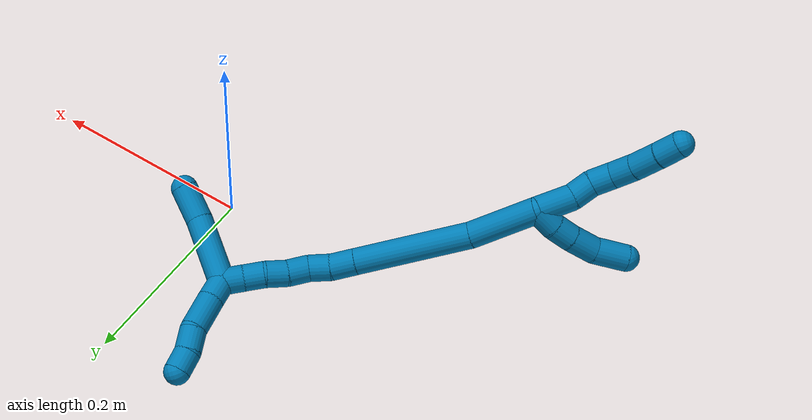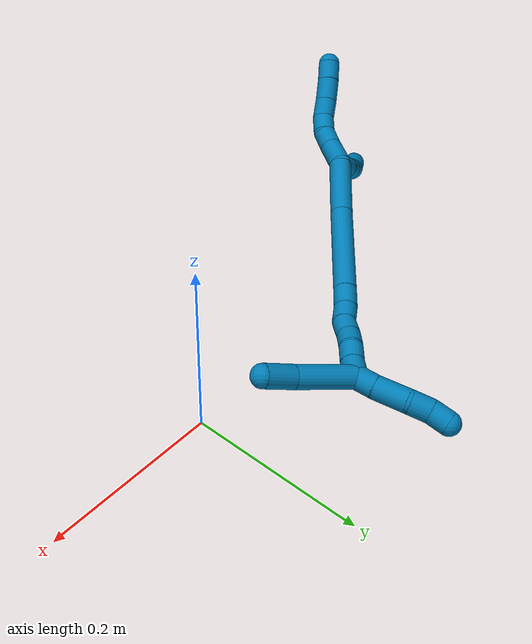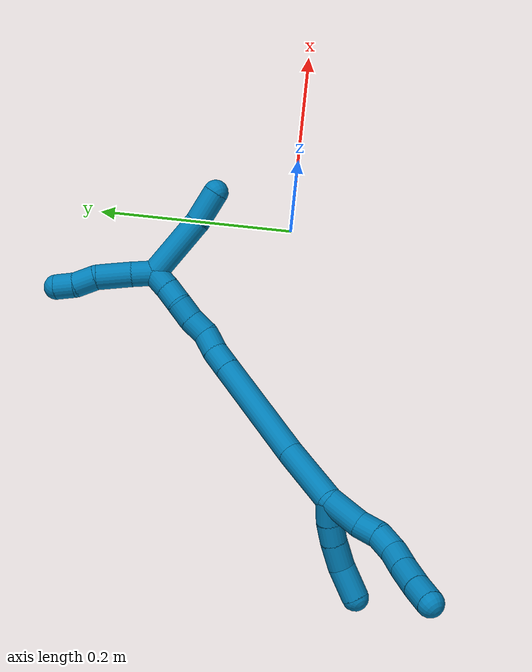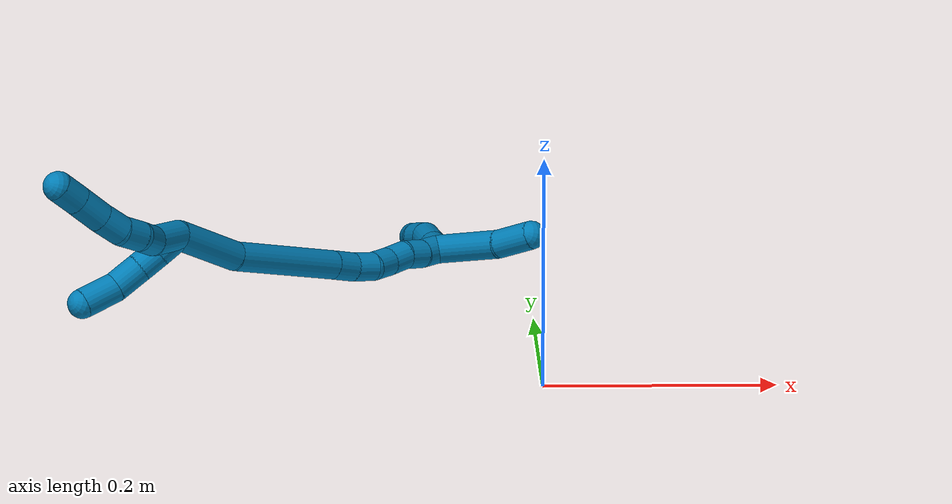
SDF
<sdf version="1.7">
 <world name="default">
  <model name="9">
   <static>0</static>
   <link name="9">
    <collision name="collision-cylinder-e_1_2_8">
     <pose>-0.000359 -0.007101 0.015891 0.420244 -0.020605 -0.004395</pose>
     <geometry><cylinder><radius>0.0125</radius><length>0.034819</length></cylinder></geometry>
     <surface>
      <friction><ode><mu>1.16</mu><mu2>1.16</mu2><slip1>0</slip1><slip2>0</slip2></ode></friction>
      <contact><ode><kp>1e+06</kp><kd>1</kd><max_vel>0</max_vel><min_depth>0.001</min_depth></ode></contact>
     </surface>
    </collision>
    <visual name="visual-cylinder-e_1_2_8">
     <pose>-0.000359 -0.007101 0.015891 0.420244 -0.020605 -0.004395</pose>
     <geometry><cylinder><radius>0.0125</radius><length>0.034819</length></cylinder></geometry>
     <material><ambient>0 0.490196 0.709804 1</ambient></material>
    </visual>
    <collision name="collision-cylinder-e_2_8_9">
     <pose>0.002308 -0.016962 0.0418 0.268761 0.283296 0.038554</pose>
     <geometry><cylinder><radius>0.0125</radius><length>0.021644</length></cylinder></geometry>
     <surface>
      <friction><ode><mu>1.16</mu><mu2>1.16</mu2><slip1>0</slip1><slip2>0</slip2></ode></friction>
      <contact><ode><kp>1e+06</kp><kd>1</kd><max_vel>0</max_vel><min_depth>0.001</min_depth></ode></contact>
     </surface>
    </collision>
    <visual name="visual-cylinder-e_2_8_9">
     <pose>0.002308 -0.016962 0.0418 0.268761 0.283296 0.038554</pose>
     <geometry><cylinder><radius>0.0125</radius><length>0.021644</length></cylinder></geometry>
     <material><ambient>0 0.490196 0.709804 1</ambient></material>
    </visual>
    <collision name="collision-cylinder-e_3_9_10">
     <pose>0.005911 -0.0201 0.062522 0.035407 0.053929 0.000955</pose>
     <geometry><cylinder><radius>0.0125</radius><length>0.021453</length></cylinder></geometry>
     <surface>
      <friction><ode><mu>1.16</mu><mu2>1.16</mu2><slip1>0</slip1><slip2>0</slip2></ode></friction>
      <contact><ode><kp>1e+06</kp><kd>1</kd><max_vel>0</max_vel><min_depth>0.001</min_depth></ode></contact>
     </surface>
    </collision>
    <visual name="visual-cylinder-e_3_9_10">
     <pose>0.005911 -0.0201 0.062522 0.035407 0.053929 0.000955</pose>
     <geometry><cylinder><radius>0.0125</radius><length>0.021453</length></cylinder></geometry>
     <material><ambient>0 0.490196 0.709804 1</ambient></material>
    </visual>
    <collision name="collision-cylinder-e_4_10_11">
     <pose>0.007811 -0.017504 0.084109 -0.266805 0.11664 -0.015671</pose>
     <geometry><cylinder><radius>0.0125</radius><length>0.02272</length></cylinder></geometry>
     <surface>
      <friction><ode><mu>1.16</mu><mu2>1.16</mu2><slip1>0</slip1><slip2>0</slip2></ode></friction>
      <contact><ode><kp>1e+06</kp><kd>1</kd><max_vel>0</max_vel><min_depth>0.001</min_depth></ode></contact>
     </surface>
    </collision>
    <visual name="visual-cylinder-e_4_10_11">
     <pose>0.007811 -0.017504 0.084109 -0.266805 0.11664 -0.015671</pose>
     <geometry><cylinder><radius>0.0125</radius><length>0.02272</length></cylinder></geometry>
     <material><ambient>0 0.490196 0.709804 1</ambient></material>
    </visual>
    <collision name="collision-cylinder-e_5_11_12">
     <pose>0.011624 -0.011003 0.10754 -0.273978 0.188855 -0.02611</pose>
     <geometry><cylinder><radius>0.0125</radius><length>0.026539</length></cylinder></geometry>
     <surface>
      <friction><ode><mu>1.16</mu><mu2>1.16</mu2><slip1>0</slip1><slip2>0</slip2></ode></friction>
      <contact><ode><kp>1e+06</kp><kd>1</kd><max_vel>0</max_vel><min_depth>0.001</min_depth></ode></contact>
     </surface>
    </collision>
    <visual name="visual-cylinder-e_5_11_12">
     <pose>0.011624 -0.011003 0.10754 -0.273978 0.188855 -0.02611</pose>
     <geometry><cylinder><radius>0.0125</radius><length>0.026539</length></cylinder></geometry>
     <material><ambient>0 0.490196 0.709804 1</ambient></material>
    </visual>
    <collision name="collision-cylinder-e_6_12_6">
     <pose>0.016467 -0.005146 0.13101 -0.210259 0.207523 -0.021976</pose>
     <geometry><cylinder><radius>0.0125</radius><length>0.022825</length></cylinder></geometry>
     <surface>
      <friction><ode><mu>1.16</mu><mu2>1.16</mu2><slip1>0</slip1><slip2>0</slip2></ode></friction>
      <contact><ode><kp>1e+06</kp><kd>1</kd><max_vel>0</max_vel><min_depth>0.001</min_depth></ode></contact>
     </surface>
    </collision>
    <visual name="visual-cylinder-e_6_12_6">
     <pose>0.016467 -0.005146 0.13101 -0.210259 0.207523 -0.021976</pose>
     <geometry><cylinder><radius>0.0125</radius><length>0.022825</length></cylinder></geometry>
     <material><ambient>0 0.490196 0.709804 1</ambient></material>
    </visual>
    <collision name="collision-cylinder-e_1_2_13">
     <pose>-0.009834 -0.002711 0.00427 0.565713 -1.09572 -0.351039</pose>
     <geometry><cylinder><radius>0.0125</radius><length>0.022116</length></cylinder></geometry>
     <surface>
      <friction><ode><mu>1.16</mu><mu2>1.16</mu2><slip1>0</slip1><slip2>0</slip2></ode></friction>
      <contact><ode><kp>1e+06</kp><kd>1</kd><max_vel>0</max_vel><min_depth>0.001</min_depth></ode></contact>
     </surface>
    </collision>
    <visual name="visual-cylinder-e_1_2_13">
     <pose>-0.009834 -0.002711 0.00427 0.565713 -1.09572 -0.351039</pose>
     <geometry><cylinder><radius>0.0125</radius><length>0.022116</length></cylinder></geometry>
     <material><ambient>0 0.490196 0.709804 1</ambient></material>
    </visual>
    <collision name="collision-cylinder-e_2_13_14">
     <pose>-0.027748 -0.008768 0.01365 0.579684 -0.923573 -0.294703</pose>
     <geometry><cylinder><radius>0.0125</radius><length>0.02026</length></cylinder></geometry>
     <surface>
      <friction><ode><mu>1.16</mu><mu2>1.16</mu2><slip1>0</slip1><slip2>0</slip2></ode></friction>
      <contact><ode><kp>1e+06</kp><kd>1</kd><max_vel>0</max_vel><min_depth>0.001</min_depth></ode></contact>
     </surface>
    </collision>
    <visual name="visual-cylinder-e_2_13_14">
     <pose>-0.027748 -0.008768 0.01365 0.579684 -0.923573 -0.294703</pose>
     <geometry><cylinder><radius>0.0125</radius><length>0.02026</length></cylinder></geometry>
     <material><ambient>0 0.490196 0.709804 1</ambient></material>
    </visual>
    <collision name="collision-cylinder-e_3_14_15">
     <pose>-0.045413 -0.017013 0.026066 0.590718 -0.82819 -0.265871</pose>
     <geometry><cylinder><radius>0.0125</radius><length>0.026017</length></cylinder></geometry>
     <surface>
      <friction><ode><mu>1.16</mu><mu2>1.16</mu2><slip1>0</slip1><slip2>0</slip2></ode></friction>
      <contact><ode><kp>1e+06</kp><kd>1</kd><max_vel>0</max_vel><min_depth>0.001</min_depth></ode></contact>
     </surface>
    </collision>
    <visual name="visual-cylinder-e_3_14_15">
     <pose>-0.045413 -0.017013 0.026066 0.590718 -0.82819 -0.265871</pose>
     <geometry><cylinder><radius>0.0125</radius><length>0.026017</length></cylinder></geometry>
     <material><ambient>0 0.490196 0.709804 1</ambient></material>
    </visual>
    <collision name="collision-cylinder-e_4_15_5">
     <pose>-0.063865 -0.026862 0.04548 0.388049 -0.595845 -0.120527</pose>
     <geometry><cylinder><radius>0.0125</radius><length>0.031607</length></cylinder></geometry>
     <surface>
      <friction><ode><mu>1.16</mu><mu2>1.16</mu2><slip1>0</slip1><slip2>0</slip2></ode></friction>
      <contact><ode><kp>1e+06</kp><kd>1</kd><max_vel>0</max_vel><min_depth>0.001</min_depth></ode></contact>
     </surface>
    </collision>
    <visual name="visual-cylinder-e_4_15_5">
     <pose>-0.063865 -0.026862 0.04548 0.388049 -0.595845 -0.120527</pose>
     <geometry><cylinder><radius>0.0125</radius><length>0.031607</length></cylinder></geometry>
     <material><ambient>0 0.490196 0.709804 1</ambient></material>
    </visual>
    <collision name="collision-cylinder-e_1_2_16">
     <pose>-0.002382 -0.00083 -0.032792 3.1163 -0.072501 -2.47055</pose>
     <geometry><cylinder><radius>0.0125</radius><length>0.065778</length></cylinder></geometry>
     <surface>
      <friction><ode><mu>1.16</mu><mu2>1.16</mu2><slip1>0</slip1><slip2>0</slip2></ode></friction>
      <contact><ode><kp>1e+06</kp><kd>1</kd><max_vel>0</max_vel><min_depth>0.001</min_depth></ode></contact>
     </surface>
    </collision>
    <visual name="visual-cylinder-e_1_2_16">
     <pose>-0.002382 -0.00083 -0.032792 3.1163 -0.072501 -2.47055</pose>
     <geometry><cylinder><radius>0.0125</radius><length>0.065778</length></cylinder></geometry>
     <material><ambient>0 0.490196 0.709804 1</ambient></material>
    </visual>
    <collision name="collision-cylinder-e_2_16_17">
     <pose>1.1e-05 0.004037 -0.119447 -3.03623 0.08795 -1.39085</pose>
     <geometry><cylinder><radius>0.0125</radius><length>0.108747</length></cylinder></geometry>
     <surface>
      <friction><ode><mu>1.16</mu><mu2>1.16</mu2><slip1>0</slip1><slip2>0</slip2></ode></friction>
      <contact><ode><kp>1e+06</kp><kd>1</kd><max_vel>0</max_vel><min_depth>0.001</min_depth></ode></contact>
     </surface>
    </collision>
    <visual name="visual-cylinder-e_2_16_17">
     <pose>1.1e-05 0.004037 -0.119447 -3.03623 0.08795 -1.39085</pose>
     <geometry><cylinder><radius>0.0125</radius><length>0.108747</length></cylinder></geometry>
     <material><ambient>0 0.490196 0.709804 1</ambient></material>
    </visual>
    <collision name="collision-cylinder-e_3_17_18">
     <pose>0.005735 0.010822 -0.184825 -3.04731 0.081783 -1.42883</pose>
     <geometry><cylinder><radius>0.0125</radius><length>0.023209</length></cylinder></geometry>
     <surface>
      <friction><ode><mu>1.16</mu><mu2>1.16</mu2><slip1>0</slip1><slip2>0</slip2></ode></friction>
      <contact><ode><kp>1e+06</kp><kd>1</kd><max_vel>0</max_vel><min_depth>0.001</min_depth></ode></contact>
     </surface>
    </collision>
    <visual name="visual-cylinder-e_3_17_18">
     <pose>0.005735 0.010822 -0.184825 -3.04731 0.081783 -1.42883</pose>
     <geometry><cylinder><radius>0.0125</radius><length>0.023209</length></cylinder></geometry>
     <material><ambient>0 0.490196 0.709804 1</ambient></material>
    </visual>
    <collision name="collision-cylinder-e_4_18_19">
     <pose>0.009429 0.012681 -0.206386 -3.06513 0.266015 -2.58469</pose>
     <geometry><cylinder><radius>0.0125</radius><length>0.020888</length></cylinder></geometry>
     <surface>
      <friction><ode><mu>1.16</mu><mu2>1.16</mu2><slip1>0</slip1><slip2>0</slip2></ode></friction>
      <contact><ode><kp>1e+06</kp><kd>1</kd><max_vel>0</max_vel><min_depth>0.001</min_depth></ode></contact>
     </surface>
    </collision>
    <visual name="visual-cylinder-e_4_18_19">
     <pose>0.009429 0.012681 -0.206386 -3.06513 0.266015 -2.58469</pose>
     <geometry><cylinder><radius>0.0125</radius><length>0.020888</length></cylinder></geometry>
     <material><ambient>0 0.490196 0.709804 1</ambient></material>
    </visual>
    <collision name="collision-cylinder-e_5_19_20">
     <pose>0.013626 0.017533 -0.225892 -2.73411 0.140008 -0.654365</pose>
     <geometry><cylinder><radius>0.0125</radius><length>0.020808</length></cylinder></geometry>
     <surface>
      <friction><ode><mu>1.16</mu><mu2>1.16</mu2><slip1>0</slip1><slip2>0</slip2></ode></friction>
      <contact><ode><kp>1e+06</kp><kd>1</kd><max_vel>0</max_vel><min_depth>0.001</min_depth></ode></contact>
     </surface>
    </collision>
    <visual name="visual-cylinder-e_5_19_20">
     <pose>0.013626 0.017533 -0.225892 -2.73411 0.140008 -0.654365</pose>
     <geometry><cylinder><radius>0.0125</radius><length>0.020808</length></cylinder></geometry>
     <material><ambient>0 0.490196 0.709804 1</ambient></material>
    </visual>
    <collision name="collision-cylinder-e_6_20_21">
     <pose>0.018258 0.025296 -0.244183 -2.74681 0.320881 -1.36063</pose>
     <geometry><cylinder><radius>0.0125</radius><length>0.020165</length></cylinder></geometry>
     <surface>
      <friction><ode><mu>1.16</mu><mu2>1.16</mu2><slip1>0</slip1><slip2>0</slip2></ode></friction>
      <contact><ode><kp>1e+06</kp><kd>1</kd><max_vel>0</max_vel><min_depth>0.001</min_depth></ode></contact>
     </surface>
    </collision>
    <visual name="visual-cylinder-e_6_20_21">
     <pose>0.018258 0.025296 -0.244183 -2.74681 0.320881 -1.36063</pose>
     <geometry><cylinder><radius>0.0125</radius><length>0.020165</length></cylinder></geometry>
     <material><ambient>0 0.490196 0.709804 1</ambient></material>
    </visual>
    <collision name="collision-cylinder-e_7_21_22">
     <pose>0.023067 0.030922 -0.2627 -2.94333 0.163415 -1.37764</pose>
     <geometry><cylinder><radius>0.0125</radius><length>0.020024</length></cylinder></geometry>
     <surface>
      <friction><ode><mu>1.16</mu><mu2>1.16</mu2><slip1>0</slip1><slip2>0</slip2></ode></friction>
      <contact><ode><kp>1e+06</kp><kd>1</kd><max_vel>0</max_vel><min_depth>0.001</min_depth></ode></contact>
     </surface>
    </collision>
    <visual name="visual-cylinder-e_7_21_22">
     <pose>0.023067 0.030922 -0.2627 -2.94333 0.163415 -1.37764</pose>
     <geometry><cylinder><radius>0.0125</radius><length>0.020024</length></cylinder></geometry>
     <material><ambient>0 0.490196 0.709804 1</ambient></material>
    </visual>
    <collision name="collision-cylinder-e_8_22_1">
     <pose>0.026636 0.036346 -0.281765 -2.78643 0.191505 -0.982762</pose>
     <geometry><cylinder><radius>0.0125</radius><length>0.02038</length></cylinder></geometry>
     <surface>
      <friction><ode><mu>1.16</mu><mu2>1.16</mu2><slip1>0</slip1><slip2>0</slip2></ode></friction>
      <contact><ode><kp>1e+06</kp><kd>1</kd><max_vel>0</max_vel><min_depth>0.001</min_depth></ode></contact>
     </surface>
    </collision>
    <visual name="visual-cylinder-e_8_22_1">
     <pose>0.026636 0.036346 -0.281765 -2.78643 0.191505 -0.982762</pose>
     <geometry><cylinder><radius>0.0125</radius><length>0.02038</length></cylinder></geometry>
     <material><ambient>0 0.490196 0.709804 1</ambient></material>
    </visual>
    <collision name="collision-cylinder-e_1_1_23">
     <pose>0.023386 0.047671 -0.296746 -2.19079 -0.493837 0.910671</pose>
     <geometry><cylinder><radius>0.0125</radius><length>0.021897</length></cylinder></geometry>
     <surface>
      <friction><ode><mu>1.16</mu><mu2>1.16</mu2><slip1>0</slip1><slip2>0</slip2></ode></friction>
      <contact><ode><kp>1e+06</kp><kd>1</kd><max_vel>0</max_vel><min_depth>0.001</min_depth></ode></contact>
     </surface>
    </collision>
    <visual name="visual-cylinder-e_1_1_23">
     <pose>0.023386 0.047671 -0.296746 -2.19079 -0.493837 0.910671</pose>
     <geometry><cylinder><radius>0.0125</radius><length>0.021897</length></cylinder></geometry>
     <material><ambient>0 0.490196 0.709804 1</ambient></material>
    </visual>
    <collision name="collision-cylinder-e_2_23_24">
     <pose>0.010121 0.069184 -0.31023 -2.094 -0.473063 0.790674</pose>
     <geometry><cylinder><radius>0.0125</radius><length>0.035448</length></cylinder></geometry>
     <surface>
      <friction><ode><mu>1.16</mu><mu2>1.16</mu2><slip1>0</slip1><slip2>0</slip2></ode></friction>
      <contact><ode><kp>1e+06</kp><kd>1</kd><max_vel>0</max_vel><min_depth>0.001</min_depth></ode></contact>
     </surface>
    </collision>
    <visual name="visual-cylinder-e_2_23_24">
     <pose>0.010121 0.069184 -0.31023 -2.094 -0.473063 0.790674</pose>
     <geometry><cylinder><radius>0.0125</radius><length>0.035448</length></cylinder></geometry>
     <material><ambient>0 0.490196 0.709804 1</ambient></material>
    </visual>
    <collision name="collision-cylinder-e_3_24_25">
     <pose>-0.00579 0.089774 -0.321955 -2.07735 -0.780215 1.21926</pose>
     <geometry><cylinder><radius>0.0125</radius><length>0.022277</length></cylinder></geometry>
     <surface>
      <friction><ode><mu>1.16</mu><mu2>1.16</mu2><slip1>0</slip1><slip2>0</slip2></ode></friction>
      <contact><ode><kp>1e+06</kp><kd>1</kd><max_vel>0</max_vel><min_depth>0.001</min_depth></ode></contact>
     </surface>
    </collision>
    <visual name="visual-cylinder-e_3_24_25">
     <pose>-0.00579 0.089774 -0.321955 -2.07735 -0.780215 1.21926</pose>
     <geometry><cylinder><radius>0.0125</radius><length>0.022277</length></cylinder></geometry>
     <material><ambient>0 0.490196 0.709804 1</ambient></material>
    </visual>
    <collision name="collision-cylinder-e_4_25_4">
     <pose>-0.019454 0.102773 -0.331532 -2.32745 -0.609106 1.25991</pose>
     <geometry><cylinder><radius>0.0125</radius><length>0.020378</length></cylinder></geometry>
     <surface>
      <friction><ode><mu>1.16</mu><mu2>1.16</mu2><slip1>0</slip1><slip2>0</slip2></ode></friction>
      <contact><ode><kp>1e+06</kp><kd>1</kd><max_vel>0</max_vel><min_depth>0.001</min_depth></ode></contact>
     </surface>
    </collision>
    <visual name="visual-cylinder-e_4_25_4">
     <pose>-0.019454 0.102773 -0.331532 -2.32745 -0.609106 1.25991</pose>
     <geometry><cylinder><radius>0.0125</radius><length>0.020378</length></cylinder></geometry>
     <material><ambient>0 0.490196 0.709804 1</ambient></material>
    </visual>
    <collision name="collision-cylinder-e_1_1_26">
     <pose>0.056105 0.022699 -0.296722 1.88564 0.991429 1.28035</pose>
     <geometry><cylinder><radius>0.0125</radius><length>0.065796</length></cylinder></geometry>
     <surface>
      <friction><ode><mu>1.16</mu><mu2>1.16</mu2><slip1>0</slip1><slip2>0</slip2></ode></friction>
      <contact><ode><kp>1e+06</kp><kd>1</kd><max_vel>0</max_vel><min_depth>0.001</min_depth></ode></contact>
     </surface>
    </collision>
    <visual name="visual-cylinder-e_1_1_26">
     <pose>0.056105 0.022699 -0.296722 1.88564 0.991429 1.28035</pose>
     <geometry><cylinder><radius>0.0125</radius><length>0.065796</length></cylinder></geometry>
     <material><ambient>0 0.490196 0.709804 1</ambient></material>
    </visual>
    <collision name="collision-cylinder-e_2_26_3">
     <pose>0.099212 -0.000523 -0.305855 2.09877 1.14546 1.68613</pose>
     <geometry><cylinder><radius>0.0125</radius><length>0.034204</length></cylinder></geometry>
     <surface>
      <friction><ode><mu>1.16</mu><mu2>1.16</mu2><slip1>0</slip1><slip2>0</slip2></ode></friction>
      <contact><ode><kp>1e+06</kp><kd>1</kd><max_vel>0</max_vel><min_depth>0.001</min_depth></ode></contact>
     </surface>
    </collision>
    <visual name="visual-cylinder-e_2_26_3">
     <pose>0.099212 -0.000523 -0.305855 2.09877 1.14546 1.68613</pose>
     <geometry><cylinder><radius>0.0125</radius><length>0.034204</length></cylinder></geometry>
     <material><ambient>0 0.490196 0.709804 1</ambient></material>
    </visual>
    <collision name="collision-sphere-3">
     <pose>0.11479 -0.006619 -0.30941 0 -0 0</pose>
     <geometry><sphere><radius>0.0125</radius></sphere></geometry>
     <surface>
      <friction><ode><mu>1.16</mu><mu2>1.16</mu2><slip1>0</slip1><slip2>0</slip2></ode></friction>
      <contact><ode><kp>1e+06</kp><kd>1</kd><max_vel>0</max_vel><min_depth>0.001</min_depth></ode></contact>
     </surface>
    </collision>
    <visual name="visual-sphere-3">
     <pose>0.11479 -0.006619 -0.30941 0 -0 0</pose>
     <geometry><sphere><radius>0.0125</radius></sphere></geometry>
     <material><ambient>0 0.490196 0.709804 1</ambient></material>
    </visual>
    <collision name="collision-sphere-26">
     <pose>0.083634 0.005573 -0.3023 0 -0 0</pose>
     <geometry><sphere><radius>0.0125</radius></sphere></geometry>
     <surface>
      <friction><ode><mu>1.16</mu><mu2>1.16</mu2><slip1>0</slip1><slip2>0</slip2></ode></friction>
      <contact><ode><kp>1e+06</kp><kd>1</kd><max_vel>0</max_vel><min_depth>0.001</min_depth></ode></contact>
     </surface>
    </collision>
    <visual name="visual-sphere-26">
     <pose>0.083634 0.005573 -0.3023 0 -0 0</pose>
     <geometry><sphere><radius>0.0125</radius></sphere></geometry>
     <material><ambient>0 0.490196 0.709804 1</ambient></material>
    </visual>
    <collision name="collision-sphere-4">
     <pose>-0.025284 0.108849 -0.337269 0 -0 0</pose>
     <geometry><sphere><radius>0.0125</radius></sphere></geometry>
     <surface>
      <friction><ode><mu>1.16</mu><mu2>1.16</mu2><slip1>0</slip1><slip2>0</slip2></ode></friction>
      <contact><ode><kp>1e+06</kp><kd>1</kd><max_vel>0</max_vel><min_depth>0.001</min_depth></ode></contact>
     </surface>
    </collision>
    <visual name="visual-sphere-4">
     <pose>-0.025284 0.108849 -0.337269 0 -0 0</pose>
     <geometry><sphere><radius>0.0125</radius></sphere></geometry>
     <material><ambient>0 0.490196 0.709804 1</ambient></material>
    </visual>
    <collision name="collision-sphere-25">
     <pose>-0.013625 0.096696 -0.325796 0 -0 0</pose>
     <geometry><sphere><radius>0.0125</radius></sphere></geometry>
     <surface>
      <friction><ode><mu>1.16</mu><mu2>1.16</mu2><slip1>0</slip1><slip2>0</slip2></ode></friction>
      <contact><ode><kp>1e+06</kp><kd>1</kd><max_vel>0</max_vel><min_depth>0.001</min_depth></ode></contact>
     </surface>
    </collision>
    <visual name="visual-sphere-25">
     <pose>-0.013625 0.096696 -0.325796 0 -0 0</pose>
     <geometry><sphere><radius>0.0125</radius></sphere></geometry>
     <material><ambient>0 0.490196 0.709804 1</ambient></material>
    </visual>
    <collision name="collision-sphere-24">
     <pose>0.002045 0.082851 -0.318114 0 -0 0</pose>
     <geometry><sphere><radius>0.0125</radius></sphere></geometry>
     <surface>
      <friction><ode><mu>1.16</mu><mu2>1.16</mu2><slip1>0</slip1><slip2>0</slip2></ode></friction>
      <contact><ode><kp>1e+06</kp><kd>1</kd><max_vel>0</max_vel><min_depth>0.001</min_depth></ode></contact>
     </surface>
    </collision>
    <visual name="visual-sphere-24">
     <pose>0.002045 0.082851 -0.318114 0 -0 0</pose>
     <geometry><sphere><radius>0.0125</radius></sphere></geometry>
     <material><ambient>0 0.490196 0.709804 1</ambient></material>
    </visual>
    <collision name="collision-sphere-23">
     <pose>0.018196 0.055517 -0.302347 0 -0 0</pose>
     <geometry><sphere><radius>0.0125</radius></sphere></geometry>
     <surface>
      <friction><ode><mu>1.16</mu><mu2>1.16</mu2><slip1>0</slip1><slip2>0</slip2></ode></friction>
      <contact><ode><kp>1e+06</kp><kd>1</kd><max_vel>0</max_vel><min_depth>0.001</min_depth></ode></contact>
     </surface>
    </collision>
    <visual name="visual-sphere-23">
     <pose>0.018196 0.055517 -0.302347 0 -0 0</pose>
     <geometry><sphere><radius>0.0125</radius></sphere></geometry>
     <material><ambient>0 0.490196 0.709804 1</ambient></material>
    </visual>
    <collision name="collision-sphere-1">
     <pose>0.028575 0.039825 -0.291144 0 -0 0</pose>
     <geometry><sphere><radius>0.0125</radius></sphere></geometry>
     <surface>
      <friction><ode><mu>1.16</mu><mu2>1.16</mu2><slip1>0</slip1><slip2>0</slip2></ode></friction>
      <contact><ode><kp>1e+06</kp><kd>1</kd><max_vel>0</max_vel><min_depth>0.001</min_depth></ode></contact>
     </surface>
    </collision>
    <visual name="visual-sphere-1">
     <pose>0.028575 0.039825 -0.291144 0 -0 0</pose>
     <geometry><sphere><radius>0.0125</radius></sphere></geometry>
     <material><ambient>0 0.490196 0.709804 1</ambient></material>
    </visual>
    <collision name="collision-sphere-22">
     <pose>0.024696 0.032868 -0.272386 0 -0 0</pose>
     <geometry><sphere><radius>0.0125</radius></sphere></geometry>
     <surface>
      <friction><ode><mu>1.16</mu><mu2>1.16</mu2><slip1>0</slip1><slip2>0</slip2></ode></friction>
      <contact><ode><kp>1e+06</kp><kd>1</kd><max_vel>0</max_vel><min_depth>0.001</min_depth></ode></contact>
     </surface>
    </collision>
    <visual name="visual-sphere-22">
     <pose>0.024696 0.032868 -0.272386 0 -0 0</pose>
     <geometry><sphere><radius>0.0125</radius></sphere></geometry>
     <material><ambient>0 0.490196 0.709804 1</ambient></material>
    </visual>
    <collision name="collision-sphere-21">
     <pose>0.021438 0.028976 -0.253015 0 -0 0</pose>
     <geometry><sphere><radius>0.0125</radius></sphere></geometry>
     <surface>
      <friction><ode><mu>1.16</mu><mu2>1.16</mu2><slip1>0</slip1><slip2>0</slip2></ode></friction>
      <contact><ode><kp>1e+06</kp><kd>1</kd><max_vel>0</max_vel><min_depth>0.001</min_depth></ode></contact>
     </surface>
    </collision>
    <visual name="visual-sphere-21">
     <pose>0.021438 0.028976 -0.253015 0 -0 0</pose>
     <geometry><sphere><radius>0.0125</radius></sphere></geometry>
     <material><ambient>0 0.490196 0.709804 1</ambient></material>
    </visual>
    <collision name="collision-sphere-12">
     <pose>0.014115 -0.007477 0.120088 0 -0 0</pose>
     <geometry><sphere><radius>0.0125</radius></sphere></geometry>
     <surface>
      <friction><ode><mu>1.16</mu><mu2>1.16</mu2><slip1>0</slip1><slip2>0</slip2></ode></friction>
      <contact><ode><kp>1e+06</kp><kd>1</kd><max_vel>0</max_vel><min_depth>0.001</min_depth></ode></contact>
     </surface>
    </collision>
    <visual name="visual-sphere-12">
     <pose>0.014115 -0.007477 0.120088 0 -0 0</pose>
     <geometry><sphere><radius>0.0125</radius></sphere></geometry>
     <material><ambient>0 0.490196 0.709804 1</ambient></material>
    </visual>
    <collision name="collision-sphere-11">
     <pose>0.009133 -0.01453 0.094993 0 -0 0</pose>
     <geometry><sphere><radius>0.0125</radius></sphere></geometry>
     <surface>
      <friction><ode><mu>1.16</mu><mu2>1.16</mu2><slip1>0</slip1><slip2>0</slip2></ode></friction>
      <contact><ode><kp>1e+06</kp><kd>1</kd><max_vel>0</max_vel><min_depth>0.001</min_depth></ode></contact>
     </surface>
    </collision>
    <visual name="visual-sphere-11">
     <pose>0.009133 -0.01453 0.094993 0 -0 0</pose>
     <geometry><sphere><radius>0.0125</radius></sphere></geometry>
     <material><ambient>0 0.490196 0.709804 1</ambient></material>
    </visual>
    <collision name="collision-sphere-10">
     <pose>0.006489 -0.020479 0.073226 0 -0 0</pose>
     <geometry><sphere><radius>0.0125</radius></sphere></geometry>
     <surface>
      <friction><ode><mu>1.16</mu><mu2>1.16</mu2><slip1>0</slip1><slip2>0</slip2></ode></friction>
      <contact><ode><kp>1e+06</kp><kd>1</kd><max_vel>0</max_vel><min_depth>0.001</min_depth></ode></contact>
     </surface>
    </collision>
    <visual name="visual-sphere-10">
     <pose>0.006489 -0.020479 0.073226 0 -0 0</pose>
     <geometry><sphere><radius>0.0125</radius></sphere></geometry>
     <material><ambient>0 0.490196 0.709804 1</ambient></material>
    </visual>
    <collision name="collision-sphere-9">
     <pose>0.005333 -0.019721 0.051818 0 -0 0</pose>
     <geometry><sphere><radius>0.0125</radius></sphere></geometry>
     <surface>
      <friction><ode><mu>1.16</mu><mu2>1.16</mu2><slip1>0</slip1><slip2>0</slip2></ode></friction>
      <contact><ode><kp>1e+06</kp><kd>1</kd><max_vel>0</max_vel><min_depth>0.001</min_depth></ode></contact>
     </surface>
    </collision>
    <visual name="visual-sphere-9">
     <pose>0.005333 -0.019721 0.051818 0 -0 0</pose>
     <geometry><sphere><radius>0.0125</radius></sphere></geometry>
     <material><ambient>0 0.490196 0.709804 1</ambient></material>
    </visual>
    <collision name="collision-sphere-2">
     <geometry><sphere><radius>0.0125</radius></sphere></geometry>
     <surface>
      <friction><ode><mu>1.16</mu><mu2>1.16</mu2><slip1>0</slip1><slip2>0</slip2></ode></friction>
      <contact><ode><kp>1e+06</kp><kd>1</kd><max_vel>0</max_vel><min_depth>0.001</min_depth></ode></contact>
     </surface>
    </collision>
    <visual name="visual-sphere-2">
     <geometry><sphere><radius>0.0125</radius></sphere></geometry>
     <material><ambient>0 0.490196 0.709804 1</ambient></material>
    </visual>
    <collision name="collision-sphere-19">
     <pose>0.012174 0.013451 -0.216433 0 -0 0</pose>
     <geometry><sphere><radius>0.0125</radius></sphere></geometry>
     <surface>
      <friction><ode><mu>1.16</mu><mu2>1.16</mu2><slip1>0</slip1><slip2>0</slip2></ode></friction>
      <contact><ode><kp>1e+06</kp><kd>1</kd><max_vel>0</max_vel><min_depth>0.001</min_depth></ode></contact>
     </surface>
    </collision>
    <visual name="visual-sphere-19">
     <pose>0.012174 0.013451 -0.216433 0 -0 0</pose>
     <geometry><sphere><radius>0.0125</radius></sphere></geometry>
     <material><ambient>0 0.490196 0.709804 1</ambient></material>
    </visual>
    <collision name="collision-sphere-8">
     <pose>-0.000717 -0.014202 0.031782 0 -0 0</pose>
     <geometry><sphere><radius>0.0125</radius></sphere></geometry>
     <surface>
      <friction><ode><mu>1.16</mu><mu2>1.16</mu2><slip1>0</slip1><slip2>0</slip2></ode></friction>
      <contact><ode><kp>1e+06</kp><kd>1</kd><max_vel>0</max_vel><min_depth>0.001</min_depth></ode></contact>
     </surface>
    </collision>
    <visual name="visual-sphere-8">
     <pose>-0.000717 -0.014202 0.031782 0 -0 0</pose>
     <geometry><sphere><radius>0.0125</radius></sphere></geometry>
     <material><ambient>0 0.490196 0.709804 1</ambient></material>
    </visual>
    <collision name="collision-sphere-6">
     <pose>0.018818 -0.002815 0.141932 0 -0 0</pose>
     <geometry><sphere><radius>0.0125</radius></sphere></geometry>
     <surface>
      <friction><ode><mu>1.16</mu><mu2>1.16</mu2><slip1>0</slip1><slip2>0</slip2></ode></friction>
      <contact><ode><kp>1e+06</kp><kd>1</kd><max_vel>0</max_vel><min_depth>0.001</min_depth></ode></contact>
     </surface>
    </collision>
    <visual name="visual-sphere-6">
     <pose>0.018818 -0.002815 0.141932 0 -0 0</pose>
     <geometry><sphere><radius>0.0125</radius></sphere></geometry>
     <material><ambient>0 0.490196 0.709804 1</ambient></material>
    </visual>
    <collision name="collision-sphere-13">
     <pose>-0.019667 -0.005422 0.00854 0 -0 0</pose>
     <geometry><sphere><radius>0.0125</radius></sphere></geometry>
     <surface>
      <friction><ode><mu>1.16</mu><mu2>1.16</mu2><slip1>0</slip1><slip2>0</slip2></ode></friction>
      <contact><ode><kp>1e+06</kp><kd>1</kd><max_vel>0</max_vel><min_depth>0.001</min_depth></ode></contact>
     </surface>
    </collision>
    <visual name="visual-sphere-13">
     <pose>-0.019667 -0.005422 0.00854 0 -0 0</pose>
     <geometry><sphere><radius>0.0125</radius></sphere></geometry>
     <material><ambient>0 0.490196 0.709804 1</ambient></material>
    </visual>
    <collision name="collision-sphere-14">
     <pose>-0.03583 -0.012114 0.018761 0 -0 0</pose>
     <geometry><sphere><radius>0.0125</radius></sphere></geometry>
     <surface>
      <friction><ode><mu>1.16</mu><mu2>1.16</mu2><slip1>0</slip1><slip2>0</slip2></ode></friction>
      <contact><ode><kp>1e+06</kp><kd>1</kd><max_vel>0</max_vel><min_depth>0.001</min_depth></ode></contact>
     </surface>
    </collision>
    <visual name="visual-sphere-14">
     <pose>-0.03583 -0.012114 0.018761 0 -0 0</pose>
     <geometry><sphere><radius>0.0125</radius></sphere></geometry>
     <material><ambient>0 0.490196 0.709804 1</ambient></material>
    </visual>
    <collision name="collision-sphere-15">
     <pose>-0.054996 -0.021912 0.033372 0 -0 0</pose>
     <geometry><sphere><radius>0.0125</radius></sphere></geometry>
     <surface>
      <friction><ode><mu>1.16</mu><mu2>1.16</mu2><slip1>0</slip1><slip2>0</slip2></ode></friction>
      <contact><ode><kp>1e+06</kp><kd>1</kd><max_vel>0</max_vel><min_depth>0.001</min_depth></ode></contact>
     </surface>
    </collision>
    <visual name="visual-sphere-15">
     <pose>-0.054996 -0.021912 0.033372 0 -0 0</pose>
     <geometry><sphere><radius>0.0125</radius></sphere></geometry>
     <material><ambient>0 0.490196 0.709804 1</ambient></material>
    </visual>
    <collision name="collision-sphere-5">
     <pose>-0.072735 -0.031811 0.057587 0 -0 0</pose>
     <geometry><sphere><radius>0.0125</radius></sphere></geometry>
     <surface>
      <friction><ode><mu>1.16</mu><mu2>1.16</mu2><slip1>0</slip1><slip2>0</slip2></ode></friction>
      <contact><ode><kp>1e+06</kp><kd>1</kd><max_vel>0</max_vel><min_depth>0.001</min_depth></ode></contact>
     </surface>
    </collision>
    <visual name="visual-sphere-5">
     <pose>-0.072735 -0.031811 0.057587 0 -0 0</pose>
     <geometry><sphere><radius>0.0125</radius></sphere></geometry>
     <material><ambient>0 0.490196 0.709804 1</ambient></material>
    </visual>
    <collision name="collision-sphere-16">
     <pose>-0.004765 -0.001659 -0.065584 0 -0 0</pose>
     <geometry><sphere><radius>0.0125</radius></sphere></geometry>
     <surface>
      <friction><ode><mu>1.16</mu><mu2>1.16</mu2><slip1>0</slip1><slip2>0</slip2></ode></friction>
      <contact><ode><kp>1e+06</kp><kd>1</kd><max_vel>0</max_vel><min_depth>0.001</min_depth></ode></contact>
     </surface>
    </collision>
    <visual name="visual-sphere-16">
     <pose>-0.004765 -0.001659 -0.065584 0 -0 0</pose>
     <geometry><sphere><radius>0.0125</radius></sphere></geometry>
     <material><ambient>0 0.490196 0.709804 1</ambient></material>
    </visual>
    <collision name="collision-sphere-17">
     <pose>0.004787 0.009733 -0.17331 0 -0 0</pose>
     <geometry><sphere><radius>0.0125</radius></sphere></geometry>
     <surface>
      <friction><ode><mu>1.16</mu><mu2>1.16</mu2><slip1>0</slip1><slip2>0</slip2></ode></friction>
      <contact><ode><kp>1e+06</kp><kd>1</kd><max_vel>0</max_vel><min_depth>0.001</min_depth></ode></contact>
     </surface>
    </collision>
    <visual name="visual-sphere-17">
     <pose>0.004787 0.009733 -0.17331 0 -0 0</pose>
     <geometry><sphere><radius>0.0125</radius></sphere></geometry>
     <material><ambient>0 0.490196 0.709804 1</ambient></material>
    </visual>
    <collision name="collision-sphere-18">
     <pose>0.006683 0.011911 -0.196339 0 -0 0</pose>
     <geometry><sphere><radius>0.0125</radius></sphere></geometry>
     <surface>
      <friction><ode><mu>1.16</mu><mu2>1.16</mu2><slip1>0</slip1><slip2>0</slip2></ode></friction>
      <contact><ode><kp>1e+06</kp><kd>1</kd><max_vel>0</max_vel><min_depth>0.001</min_depth></ode></contact>
     </surface>
    </collision>
    <visual name="visual-sphere-18">
     <pose>0.006683 0.011911 -0.196339 0 -0 0</pose>
     <geometry><sphere><radius>0.0125</radius></sphere></geometry>
     <material><ambient>0 0.490196 0.709804 1</ambient></material>
    </visual>
    <collision name="collision-sphere-20">
     <pose>0.015078 0.021616 -0.235351 0 -0 0</pose>
     <geometry><sphere><radius>0.0125</radius></sphere></geometry>
     <surface>
      <friction><ode><mu>1.16</mu><mu2>1.16</mu2><slip1>0</slip1><slip2>0</slip2></ode></friction>
      <contact><ode><kp>1e+06</kp><kd>1</kd><max_vel>0</max_vel><min_depth>0.001</min_depth></ode></contact>
     </surface>
    </collision>
    <visual name="visual-sphere-20">
     <pose>0.015078 0.021616 -0.235351 0 -0 0</pose>
     <geometry><sphere><radius>0.0125</radius></sphere></geometry>
     <material><ambient>0 0.490196 0.709804 1</ambient></material>
    </visual>
    <inertial>
     <pose>0.00841 0.011759 -0.123654 0 -0 0</pose>
     <mass>0.75</mass>
     <inertia>
      <ixx>-8.1e-05</ixx>
      <ixy>0</ixy>
      <ixz>0</ixz>
      <iyy>-6.4e-05</iyy>
      <iyz>0</iyz>
      <izz>-3.9e-05</izz>
     </inertia>
    </inertial>
   </link>
   <pose>-0.305069 -0.060108 0.152242 1.00293 -0.790496 -0.470862</pose>
  </model>
 </world>
</sdf>
